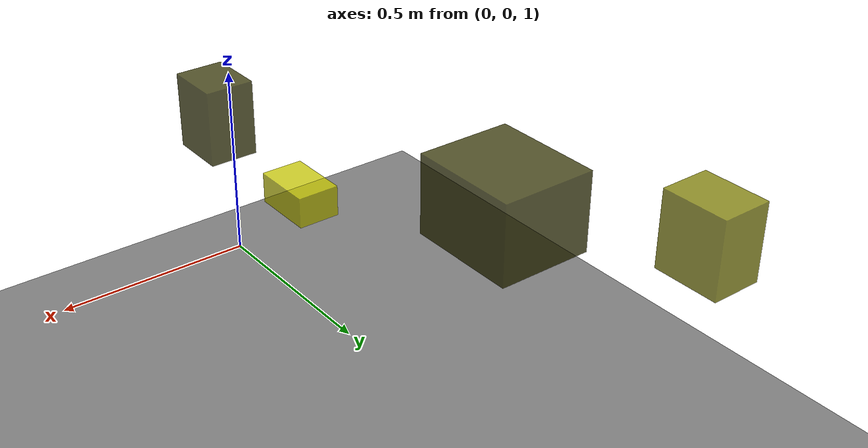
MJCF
<?xml version="1.0"?>
<mujoco model="obstacle_scene">
  <compiler angle="radian" coordinate="local"/>
  <option timestep="0.001" gravity="0 0 -9.81"/>

  <asset>
    <material name="obstacle_mat" rgba="0.8 0.8 0.0 0.8"/>
    <material name="ground_mat" rgba="0.5 0.5 0.5 1"/>
  </asset>

  <worldbody>
    <!-- Ground plane -->
    <geom name="ground" type="plane" size="3 3 0.1" material="ground_mat"/>

    <!-- Obstacles -->
    <body name="obstacle_0" pos="-0.727074 0.226737 0.984946">
      <geom name="obs_0" type="box" size="0.157118 0.182997 0.131368" rgba="0.2 0.2 0.0 0.8"/>
    </body>
    <body name="obstacle_1" pos="-0.890948 0.824396 1.105352">
      <geom name="obs_1" type="box" size="0.078875 0.102342 0.118526" rgba="0.5 0.5 0.0 0.8"/>
    </body>
    <body name="obstacle_2" pos="-0.338806 -0.233366 0.939920">
      <geom name="obs_2" type="box" size="0.064723 0.098153 0.047776" rgba="0.8 0.8 0.0 0.8"/>
    </body>
    <body name="obstacle_3" pos="-0.361179 -0.752352 0.995547">
      <geom name="obs_3" type="box" size="0.080186 0.096658 0.126032" rgba="0.2 0.2 0.0 0.8"/>
    </body>
  </worldbody>
</mujoco>
